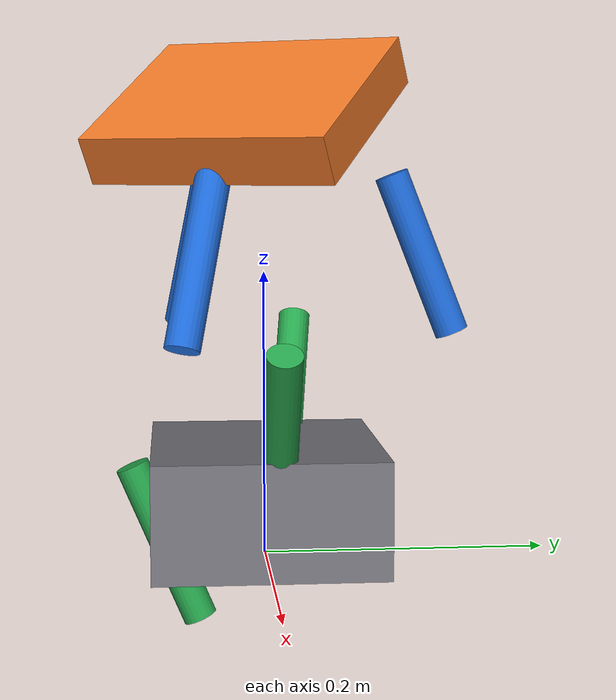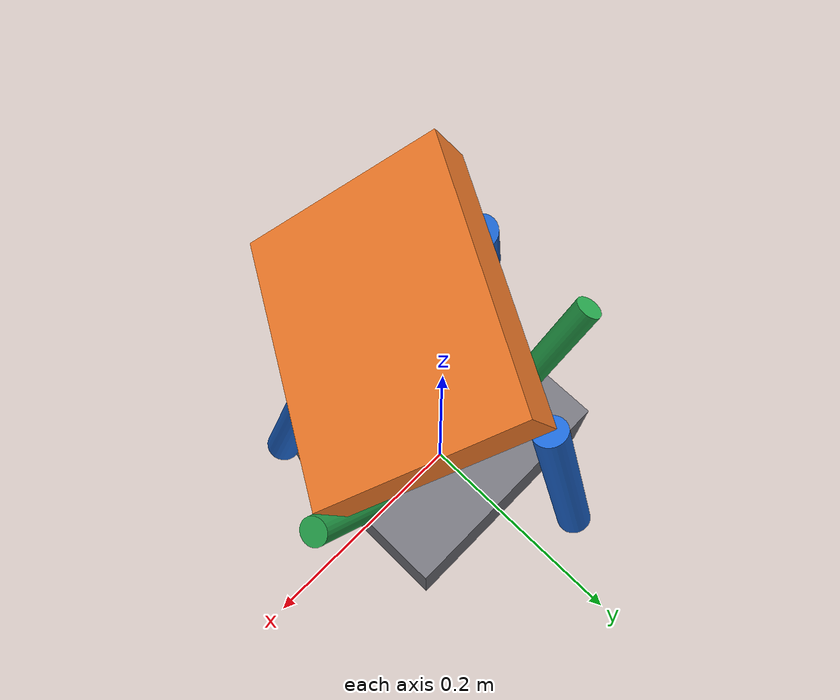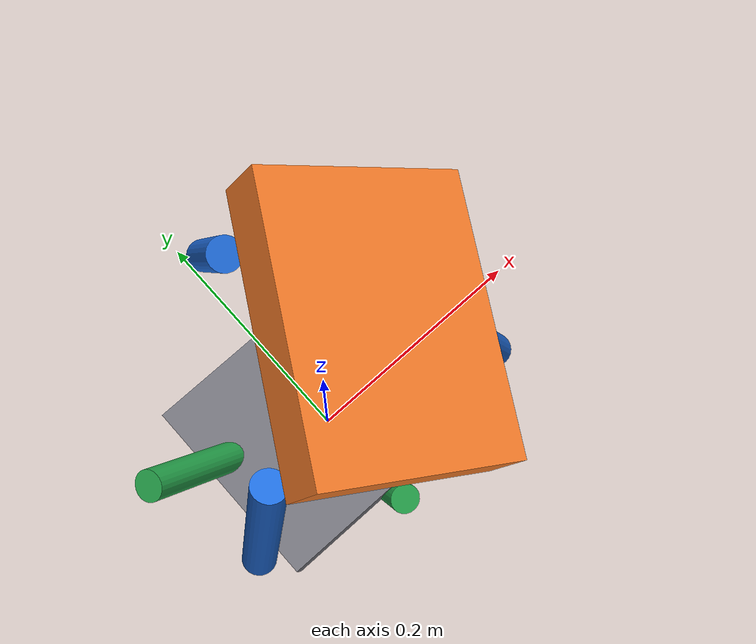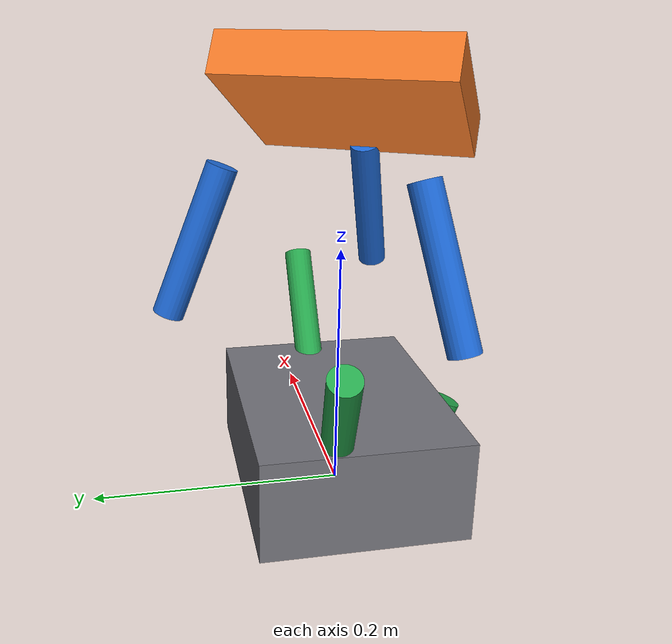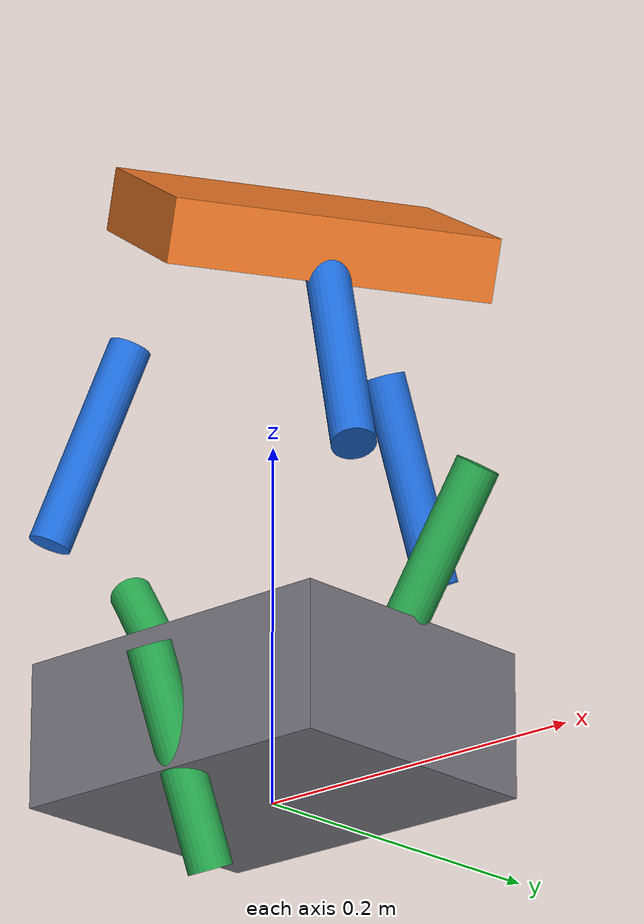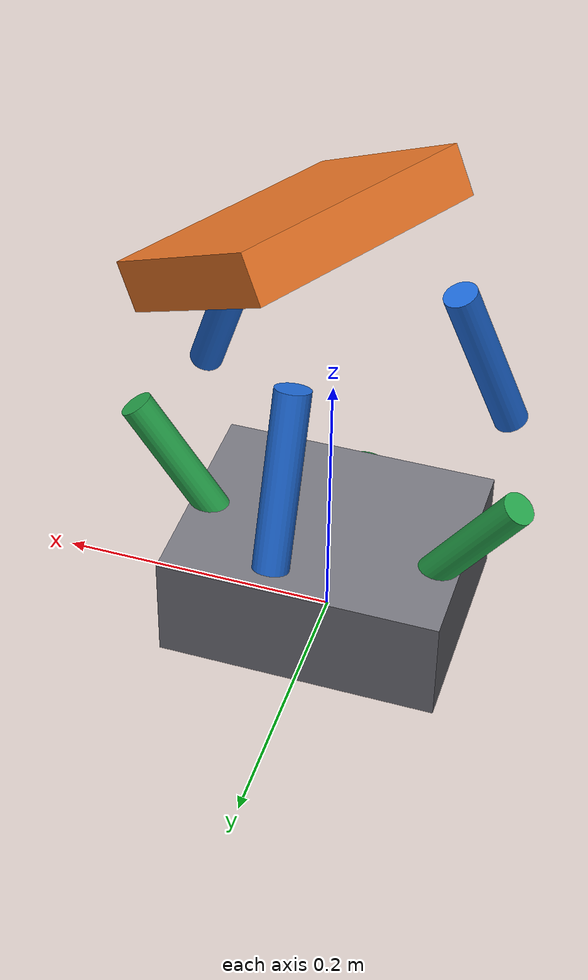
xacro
<?xml version="1.0"?>
<robot xmlns:xacro="http://www.ros.org/wiki/xacro" name="rh1_sim">

  <xacro:property name="xm430_effort_nm" value="4.1"/>
  <xacro:property name="rehab_velocity_rad_s" value="0.8"/>
  <xacro:property name="link_radius" value="0.012"/>
  <xacro:property name="link_length" value="0.12"/>

  <material name="rh1_base_gray">
    <color rgba="0.45 0.45 0.48 1.0"/>
  </material>
  <material name="rh1_link_blue">
    <color rgba="0.12 0.42 0.85 1.0"/>
  </material>
  <material name="rh1_foot_orange">
    <color rgba="0.95 0.48 0.16 1.0"/>
  </material>
  <material name="rh1_actuator_green">
    <color rgba="0.15 0.65 0.30 1.0"/>
  </material>

  <xacro:macro name="simple_inertial" params="mass:=0.05 ixx:=0.0001 iyy:=0.0001 izz:=0.0001">
    <inertial>
      <origin xyz="0 0 0" rpy="0 0 0"/>
      <mass value="${mass}"/>
      <inertia ixx="${ixx}" ixy="0" ixz="0" iyy="${iyy}" iyz="0" izz="${izz}"/>
    </inertial>
  </xacro:macro>

  <xacro:macro name="rod_link" params="name color:=rh1_link_blue length:=0.12 radius:=0.012">
    <link name="${name}">
      <xacro:simple_inertial/>
      <visual>
        <origin xyz="0 ${length / 2.0} 0" rpy="1.57079632679 0 0"/>
        <geometry>
          <cylinder radius="${radius}" length="${length}"/>
        </geometry>
        <material name="${color}"/>
      </visual>
      <collision>
        <origin xyz="0 ${length / 2.0} 0" rpy="1.57079632679 0 0"/>
        <geometry>
          <cylinder radius="${radius}" length="${length}"/>
        </geometry>
      </collision>
    </link>
  </xacro:macro>

  <xacro:macro name="rehab_revolute_joint" params="name parent child xyz rpy axis">
    <joint name="${name}" type="revolute">
      <origin xyz="${xyz}" rpy="${rpy}"/>
      <parent link="${parent}"/>
      <child link="${child}"/>
      <axis xyz="${axis}"/>
      <limit lower="-3.14" upper="3.14" effort="${xm430_effort_nm}" velocity="${rehab_velocity_rad_s}"/>
      <dynamics damping="0.08" friction="0.02"/>
    </joint>
  </xacro:macro>

  <link name="world"/>

  <joint name="base_to_wrold" type="fixed">
    <parent link="world"/>
    <child link="base_link"/>
  </joint>

  <link name="base_link">
    <xacro:simple_inertial mass="0.18" ixx="0.00024" iyy="0.00022" izz="0.00036"/>
    <visual>
      <origin xyz="0 0 0.04" rpy="0 0 0"/>
      <geometry>
        <box size="0.20 0.16 0.08"/>
      </geometry>
      <material name="rh1_base_gray"/>
    </visual>
    <collision>
      <origin xyz="0 0 0.04" rpy="0 0 0"/>
      <geometry>
        <box size="0.20 0.16 0.08"/>
      </geometry>
    </collision>
  </link>

  <xacro:rod_link name="Link1" color="rh1_actuator_green"/>
  <xacro:rod_link name="Link2"/>
  <link name="Link3">
    <xacro:simple_inertial mass="0.40" ixx="0.00074" iyy="0.00058" izz="0.00057"/>
    <visual>
      <origin xyz="0 0.07 0.02" rpy="0 0 0"/>
      <geometry>
        <box size="0.18 0.14 0.035"/>
      </geometry>
      <material name="rh1_foot_orange"/>
    </visual>
    <collision>
      <origin xyz="0 0.07 0.02" rpy="0 0 0"/>
      <geometry>
        <box size="0.18 0.14 0.035"/>
      </geometry>
    </collision>
  </link>

  <xacro:rod_link name="Link4" color="rh1_actuator_green"/>
  <xacro:rod_link name="Link5"/>
  <xacro:rod_link name="Link6" color="rh1_actuator_green"/>
  <xacro:rod_link name="Link7"/>

  <xacro:rehab_revolute_joint name="joint1" parent="base_link" child="Link1"
    xyz="-0.00024316 -0.093653 0.063941" rpy="-1.1653 0 0" axis="0 0 1"/>
  <xacro:rehab_revolute_joint name="joint2" parent="Link1" child="Link2"
    xyz="0.11105 -0.071151 0.068863" rpy="1.0806 0.92034 -2.5422" axis="0 0 -1"/>
  <xacro:rehab_revolute_joint name="joint3" parent="Link2" child="Link3"
    xyz="0 0.1355 -0.031331" rpy="0.67602 0 0" axis="0 0 1"/>
  <xacro:rehab_revolute_joint name="joint4" parent="base_link" child="Link4"
    xyz="-0.070045 0.01858 0.058418" rpy="0.97468 0 1.388" axis="0 0 1"/>
  <xacro:rehab_revolute_joint name="joint5" parent="Link4" child="Link5"
    xyz="-0.082937 0.095722 0.033269" rpy="1.0995 0.56705 0.44676" axis="0 0 -1"/>
  <xacro:rehab_revolute_joint name="joint6" parent="base_link" child="Link6"
    xyz="0.071451 0.0056756 0.056943" rpy="0.96525 0 -1.5708" axis="0 0 1"/>
  <xacro:rehab_revolute_joint name="joint7" parent="Link6" child="Link7"
    xyz="-0.12811 0.040995 0.11558" rpy="1.942 0.96525 1.5708" axis="0 0 -1"/>
</robot>
